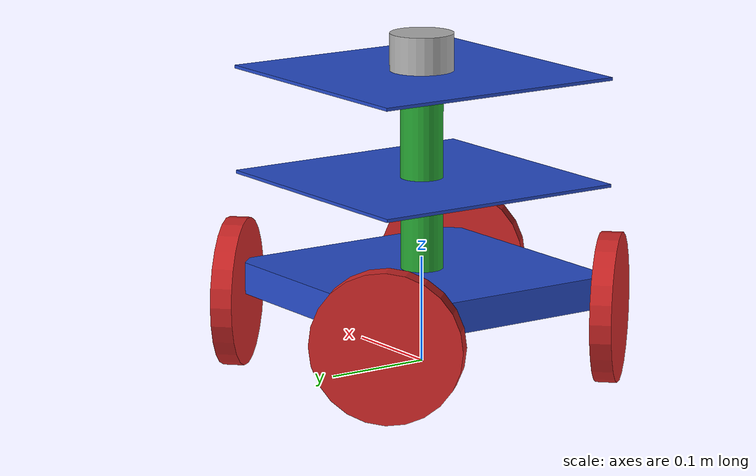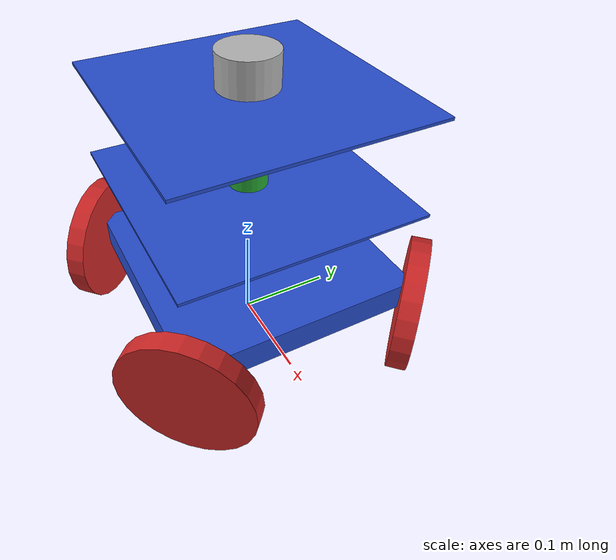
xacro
<?xml version="1.0"?>
<robot name="omini_robot" xmlns:xacro="http://www.ros.org/wiki/xacro">
    <!-- empty footprint -->
    <link name="base_footprint"/>

    <link name="camera_link"/>

    <link name="base_link">
        <visual>
            <geometry>
                <box size="0.25 0.25 0.03"/>
            </geometry>
            <origin xyz="0 0 0" rpy="0.0 0.0 0.0"/>
            <material name="blue"/>
        </visual>
        <collision>
          <geometry>
            <box size="0.25 0.25 0.03"/>
          </geometry>
          <origin xyz="0 0 0" rpy="0.0 0.0 0.0"/>
        </collision>
        <xacro:box_inertia m= "3.0" l = "${2*0.25}" w = "${2*0.25}" h = "${2*0.03}"
                                    xyz = "0.0 0.0 0.015" rpy="0.0 0.0 0.0" />
    </link>

    <xacro:macro name="upper_link" params="prefix">
      <link name="upper_link_${prefix}">
        <visual>
            <geometry>
                <box size="0.25 0.25 0.003"/>
            </geometry>
            <origin xyz="0 0 0" rpy="0.0 0.0 0.0"/>
            <material name="blue"/>
        </visual>
        <collision>
          <geometry>
            <box size="0.25 0.25 0.003"/>
          </geometry>
          <origin xyz="0 0 0" rpy="0.0 0.0 0.0"/>
        </collision>
        <xacro:box_inertia m= "1.0" l = "${2*0.25}" w = "${2*0.25}" h = "${2*0.03}"
                                    xyz = "0.0 0.0 0.015" rpy="0.0 0.0 0.0" />
      </link>
    </xacro:macro>

    <xacro:upper_link prefix="1"/>
    <xacro:upper_link prefix="2"/>

    <xacro:macro name="cylinder_link" params="prefix">
      <link name="cylinder_link_${prefix}">
        <visual>
          <geometry>
            <cylinder radius = "0.02" length = "0.1"/>
          </geometry>
          <origin xyz = "0 0 0" rpy = "0 0 0"/>
          <material name="green"/>
        </visual>
        <collision>
          <geometry>
            <cylinder radius = "0.05" length = "0.1"/>
          </geometry>
          <origin xyz = "0 0 0" rpy = "0 0 0"/>
        </collision>
        <xacro:cylinder_inertia m="0.3" r="${2*0.05}" h="0.2"
                                 xyz="0 0 0" rpy="${pi/2} 0 0" />
      </link>
    </xacro:macro>

    <xacro:cylinder_link prefix="1"/>
    <xacro:cylinder_link prefix="2"/>

    <!-- Front Left Wheel -->
    <link name="font_left_wheel">
      <visual>
        <geometry>
          <cylinder radius="0.07" length="0.02"/>
        </geometry>
        <origin xyz="0 0 0" rpy="1.5708 0 0"/>
        <material name="red"/>
      </visual>
      <collision>
        <geometry>
          <cylinder radius="0.07" length="0.02"/>
        </geometry>
        <origin xyz="0 0 0" rpy="1.5708 0 0"/>
      </collision>
      <inertial>
        <mass value="0.5"/>
        <origin xyz="0 0 0" rpy="1.5708 0 0"/>
        <inertia ixx="0.001" ixy="0.0" ixz="0.0" iyy="0.001" iyz="0.0" izz="0.001"/>
      </inertial>
    </link>

    <!-- Front Right Wheel -->
    <link name="font_right_wheel">
      <visual>
        <geometry>
          <cylinder radius="0.07" length="0.02"/>
        </geometry>
        <origin xyz="0 0 0" rpy="1.5708 0 0"/>
        <material name="red"/>
      </visual>
      <collision>
        <geometry>
          <cylinder radius="0.07" length="0.02"/>
        </geometry>
        <origin xyz="0 0 0" rpy="1.5708 0 0"/>
      </collision>
      <inertial>
        <mass value="0.5"/>
        <origin xyz="0 0 0" rpy="1.5708 0 0"/>
        <inertia ixx="0.001" ixy="0.0" ixz="0.0" iyy="0.001" iyz="0.0" izz="0.001"/>
      </inertial>
    </link>

    <!-- Back Left Wheel -->
    <link name="back_left_wheel">
      <visual>
        <geometry>
          <cylinder radius="0.07" length="0.02"/>
        </geometry>
        <origin xyz="0 0 0" rpy="1.5708 0 0"/>
        <material name="red"/>
      </visual>
      <collision>
        <geometry>
          <cylinder radius="0.07" length="0.02"/>
        </geometry>
        <origin xyz="0 0 0" rpy="1.5708 0 0"/>
      </collision>
      <inertial>
        <mass value="0.5"/>
        <origin xyz="0 0 0" rpy="1.5708 0 0"/>
        <inertia ixx="0.001" ixy="0.0" ixz="0.0" iyy="0.001" iyz="0.0" izz="0.001"/>
      </inertial>
    </link>

    <!-- Back Right Wheel -->
    <link name="back_right_wheel">
      <visual>
        <geometry>
          <cylinder radius="0.07" length="0.02"/>
        </geometry>
        <origin xyz="0 0 0" rpy="1.5708 0 0"/>
        <material name="red"/>
      </visual>
      <collision>
        <geometry>
          <cylinder radius="0.07" length="0.02"/>
        </geometry>
        <origin xyz="0 0 0" rpy="1.5708 0 0"/>
      </collision>
      <inertial>
        <mass value="0.5"/>
        <origin xyz="0 0 0" rpy="1.5708 0 0"/>
        <inertia ixx="0.001" ixy="0.0" ixz="0.0" iyy="0.001" iyz="0.0" izz="0.001"/>
      </inertial>
    </link>

    <!-- RP Lidar -->
    <link name="lidar_link">
		  <visual>
        <origin xyz="0.0 0.0 0.0" rpy="0 0 0" />
			  <geometry>
				  <cylinder radius="0.03" length="0.035"/>
			  </geometry>
			  <material name="">
				  <color rgba="0.7 0.7 0.7 1.0"/>
			  </material>
		  </visual>
		  <collision>
        <origin xyz="0.0 0.0 0.0" rpy="0 0 0" />
			  <geometry>
				  <cylinder radius="0.05" length="0.07"/>
			  </geometry>
		  </collision>
		  <inertial>
        <mass value="0.2"/>
        <origin xyz="0 0 0" rpy="0 0 0"/>
        <inertia ixx="0.001" ixy="0.0" ixz="0.0" iyy="0.001" iyz="0.0" izz="0.001"/>
      </inertial>
	  </link>

    <!-- Joints -->
    <joint name="font_left_wheel_base_joint" type="continuous">
      <parent link="base_link"/>
      <child link="font_left_wheel"/>
      <origin xyz="0.125 0.125 -0.015" rpy="0 0 -0.7854"/>
      <axis xyz="0 1 0"/>
      <dynamics damping="0.1" friction="0.1"/>
    </joint>

    <joint name="font_right_wheel_base_joint" type="continuous">
      <parent link="base_link"/>
      <child link="font_right_wheel"/>
      <origin xyz="0.125 -0.125 -0.015" rpy="0 0 0.7854"/>
      <axis xyz="0 1 0"/>
      <dynamics damping="0.1" friction="0.1"/>
    </joint>

    <joint name="back_left_wheel_base_joint" type="continuous">
      <parent link="base_link"/>
      <child link="back_left_wheel"/>
      <origin xyz="-0.125 0.125 -0.015" rpy="0 0 0.7854"/>
      <axis xyz="0 1 0"/>
      <dynamics damping="0.1" friction="0.1"/>
    </joint>

    <joint name="back_right_wheel_base_joint" type="continuous">
      <parent link="base_link"/>
      <child link="back_right_wheel"/>
      <origin xyz="-0.125 -0.125 -0.015" rpy="0 0 -0.7854"/>
      <axis xyz="0 1 0"/>
      <dynamics damping="0.1" friction="0.1"/>
    </joint>

    <joint name="base_joint" type="fixed">
        <parent link="base_footprint"/>
        <child link="base_link"/>
        <origin xyz="0 0 0.075" rpy="0 0 3.14159"/>
    </joint>

    <joint name="cylinder_1_base_joint" type="fixed">
        <parent link="base_link"/>
        <child link="cylinder_link_1"/>
        <origin xyz="0 0 ${0.1/2}" rpy="0 0 0"/>
    </joint>

    <joint name="base_upper_joint" type="fixed">
        <parent link="base_link"/>
        <child link="upper_link_1"/>
        <origin xyz="0 0 0.1" rpy="0 0 0"/>
    </joint>

    <joint name="cylinder_2_base_joint" type="fixed">
        <parent link="upper_link_1"/>
        <child link="cylinder_link_2"/>
        <origin xyz="0 0 ${0.1/2}" rpy="0 0 0"/>
    </joint>

    <joint name="upper1_upper2_joint" type="fixed">
        <parent link="upper_link_1"/>
        <child link="upper_link_2"/>
        <origin xyz="0 0 0.1" rpy="0 0 0"/>
    </joint>

    <joint name="lidar_joint" type="fixed">
      <parent link="base_link"/>
      <child link="lidar_link"/>
      <origin xyz="0.0 0 0.22" rpy="0 0 0"/>
    </joint>
  <joint name="camera_mount_joint" type="fixed">
    <parent link="base_link"/>
    <child link="camera_link"/>
    <origin xyz="0.0 0 0.0" rpy="0 0 0"/>
  </joint>
</robot>
